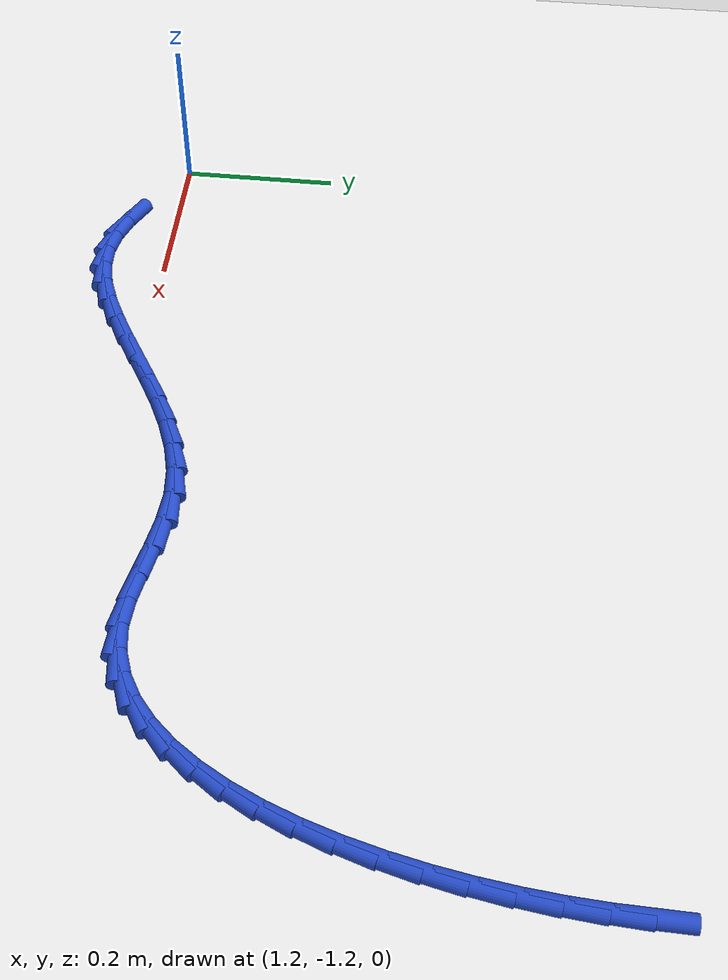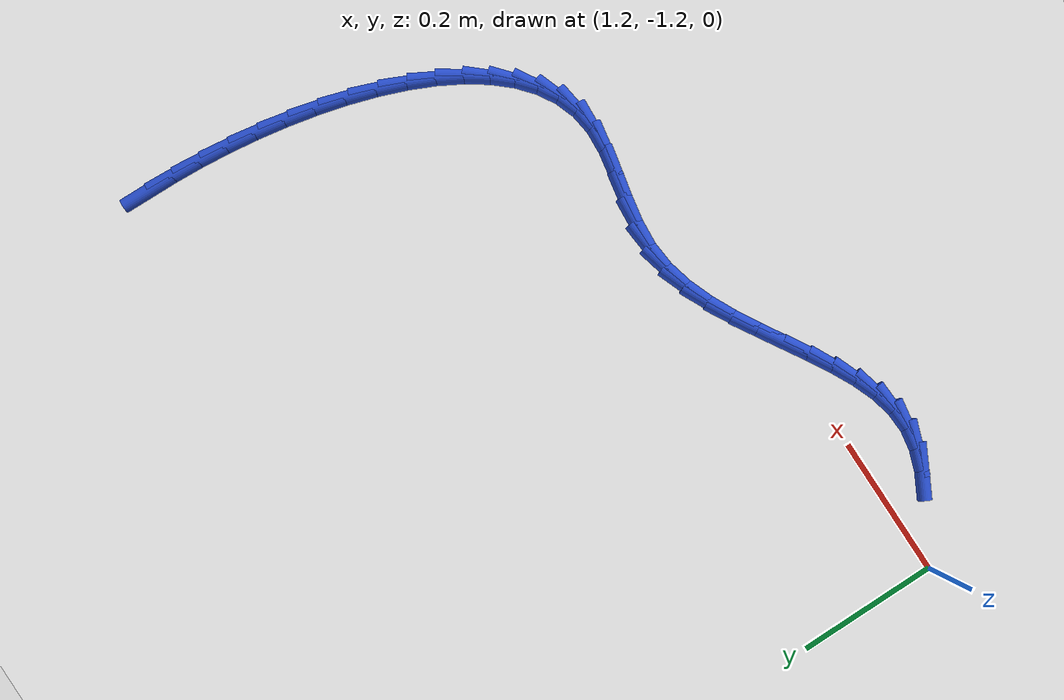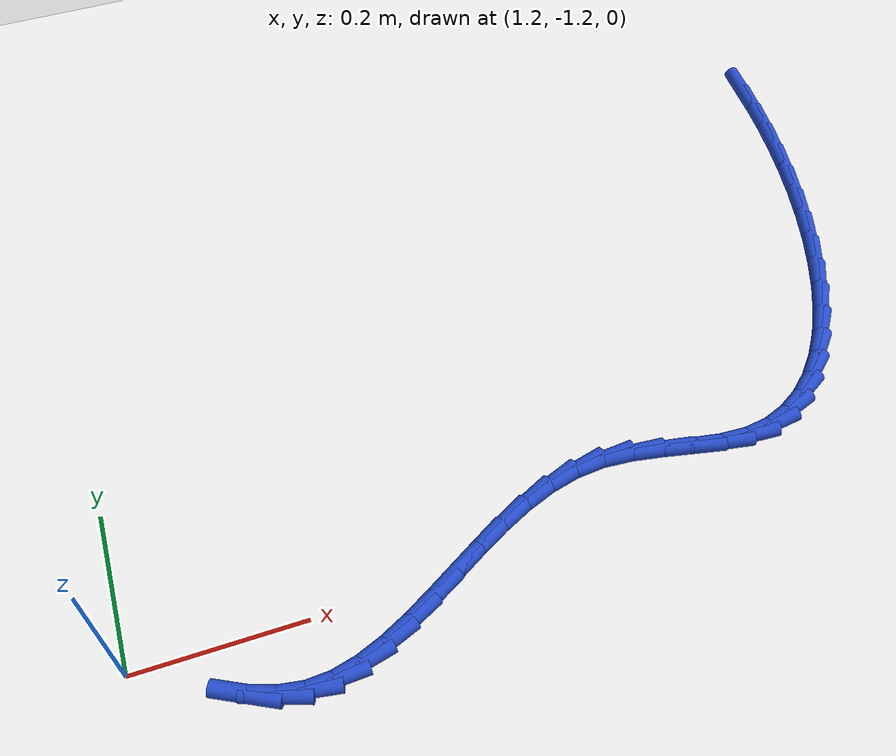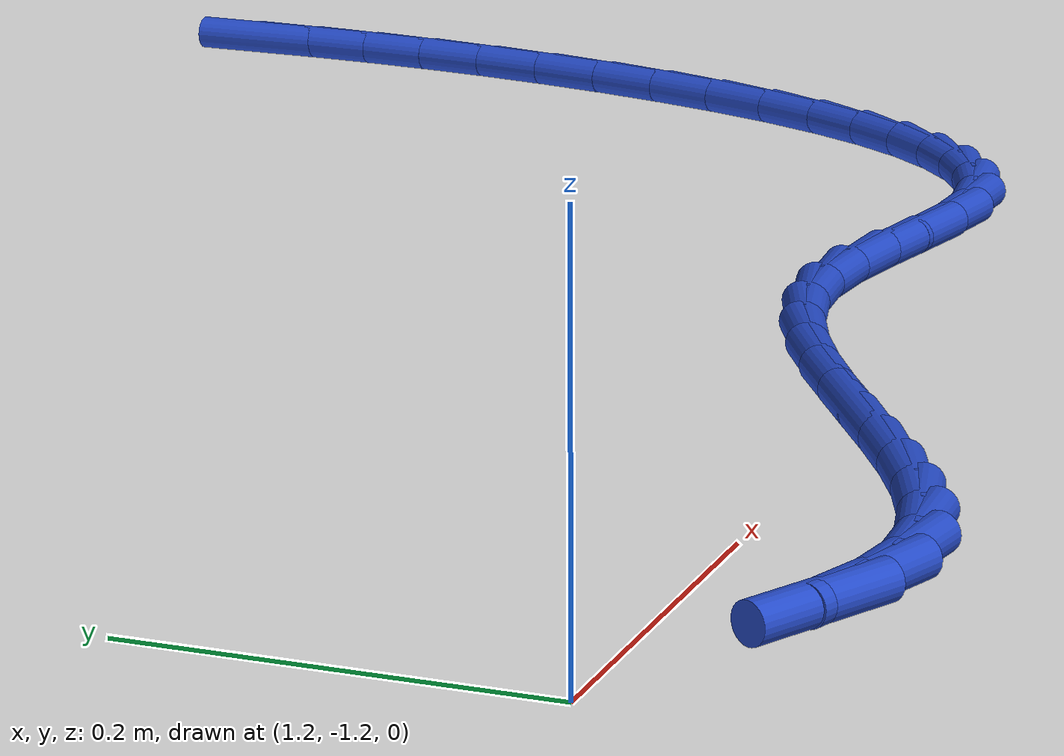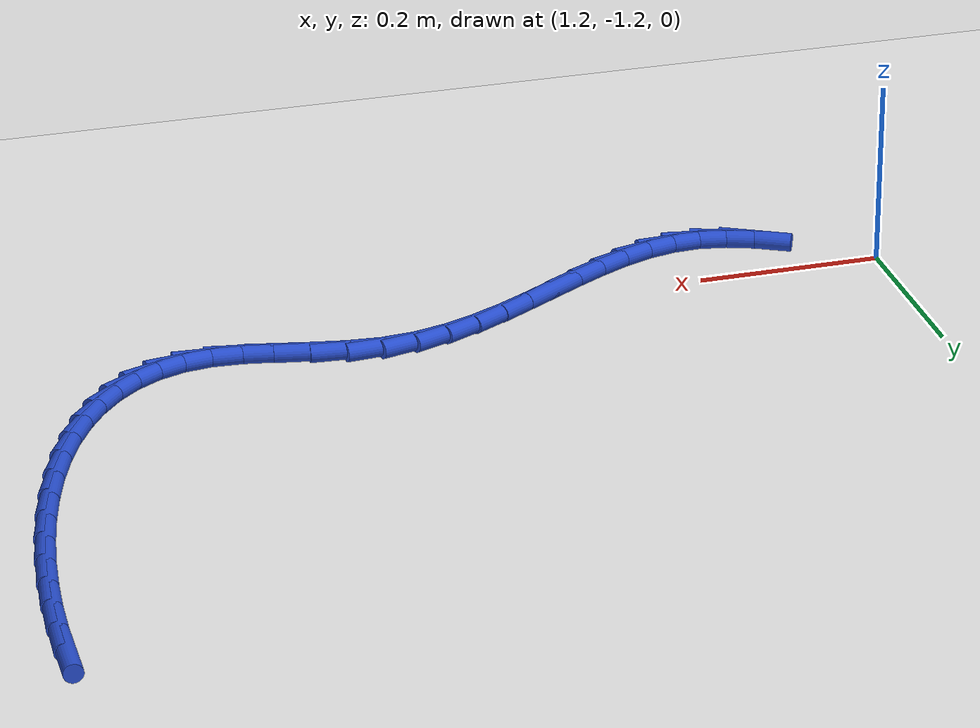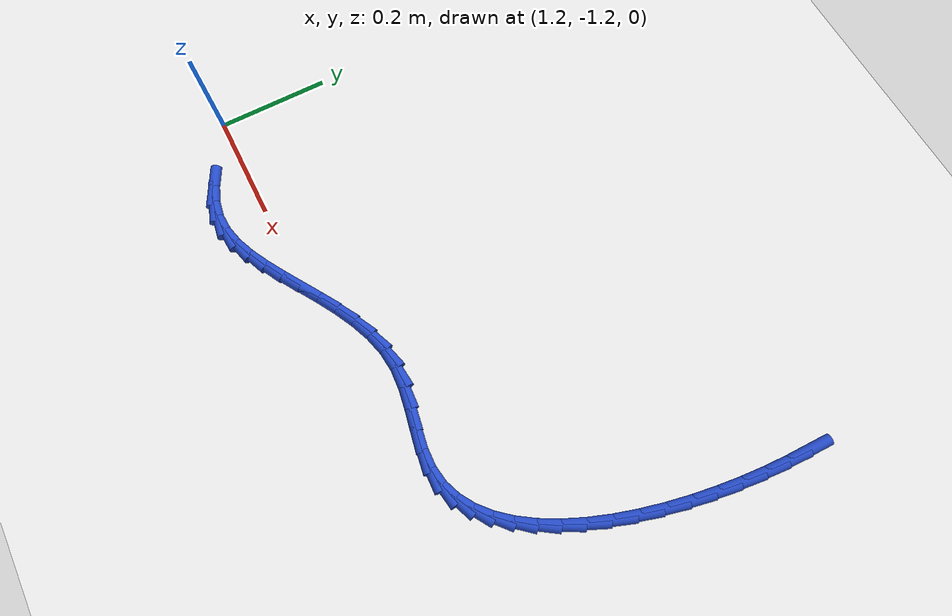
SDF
<sdf version="1.6">
 <world name="default">
  <model name="ground_plane">
   <static>1</static>
   <link name="link">
    <collision name="collision">
     <geometry><plane><normal>0 0 1</normal><size>100 100</size></plane></geometry>
     <surface><friction><ode><mu>100</mu><mu2>50</mu2></ode></friction></surface>
    </collision>
    <visual name="visual">
     <cast_shadows>0</cast_shadows>
     <geometry><plane><normal>0 0 1</normal><size>100 100</size></plane></geometry>
     <material>
      <script><uri>file://media/materials/scripts/gazebo.material</uri><name>Gazebo/WhiteGlow</name></script>
     </material>
    </visual>
   </link>
  </model>
  <model name="line">
   <link name="link_129">
    <pose>2.2099107903490363 -0.5931492830662242 0.01 0 1.57 1.547180392902716</pose>
    <collision name="collision">
     <geometry><cylinder><radius>0.01</radius><length>0.08</length></cylinder></geometry>
    </collision>
    <visual name="visual">
     <material>
      <script><name>Gazebo/Blue</name><uri>file://media/materials/scripts/gazebo.material</uri></script>
     </material>
     <geometry><cylinder><radius>0.01</radius><length>0.08</length></cylinder></geometry>
    </visual>
   </link>
   <link name="link_130">
    <pose>2.2089753102608602 -0.6327541607045764 0.01 0 1.57 1.5097225720881526</pose>
    <collision name="collision">
     <geometry><cylinder><radius>0.01</radius><length>0.08</length></cylinder></geometry>
    </collision>
    <visual name="visual">
     <material>
      <script><name>Gazebo/Blue</name><uri>file://media/materials/scripts/gazebo.material</uri></script>
     </material>
     <geometry><cylinder><radius>0.01</radius><length>0.08</length></cylinder></geometry>
    </visual>
   </link>
   <link name="link_131">
    <pose>2.2064498785391273 -0.6740532587601099 0.01 0 1.57 1.4731171753400605</pose>
    <collision name="collision">
     <geometry><cylinder><radius>0.01</radius><length>0.08</length></cylinder></geometry>
    </collision>
    <visual name="visual">
     <material>
      <script><name>Gazebo/Blue</name><uri>file://media/materials/scripts/gazebo.material</uri></script>
     </material>
     <geometry><cylinder><radius>0.01</radius><length>0.08</length></cylinder></geometry>
    </visual>
   </link>
   <link name="link_132">
    <pose>2.202285937525041 -0.7165463547779062 0.01 0 1.57 1.436318338306585</pose>
    <collision name="collision">
     <geometry><cylinder><radius>0.01</radius><length>0.08</length></cylinder></geometry>
    </collision>
    <visual name="visual">
     <material>
      <script><name>Gazebo/Blue</name><uri>file://media/materials/scripts/gazebo.material</uri></script>
     </material>
     <geometry><cylinder><radius>0.01</radius><length>0.08</length></cylinder></geometry>
    </visual>
   </link>
   <link name="link_133">
    <pose>2.19644593788883 -0.7597114335116681 0.01 0 1.57 1.3981449103466648</pose>
    <collision name="collision">
     <geometry><cylinder><radius>0.01</radius><length>0.08</length></cylinder></geometry>
    </collision>
    <visual name="visual">
     <material>
      <script><name>Gazebo/Blue</name><uri>file://media/materials/scripts/gazebo.material</uri></script>
     </material>
     <geometry><cylinder><radius>0.01</radius><length>0.08</length></cylinder></geometry>
    </visual>
   </link>
   <link name="link_134">
    <pose>2.188892330300722 -0.8030264797150984 0.01 0 1.57 1.3574177079162992</pose>
    <collision name="collision">
     <geometry><cylinder><radius>0.01</radius><length>0.08</length></cylinder></geometry>
    </collision>
    <visual name="visual">
     <material>
      <script><name>Gazebo/Blue</name><uri>file://media/materials/scripts/gazebo.material</uri></script>
     </material>
     <geometry><cylinder><radius>0.01</radius><length>0.08</length></cylinder></geometry>
    </visual>
   </link>
   <link name="link_135">
    <pose>2.1795875654309476 -0.8459694781419009 0.01 0 1.57 1.312850792020702</pose>
    <collision name="collision">
     <geometry><cylinder><radius>0.01</radius><length>0.08</length></cylinder></geometry>
    </collision>
    <visual name="visual">
     <material>
      <script><name>Gazebo/Blue</name><uri>file://media/materials/scripts/gazebo.material</uri></script>
     </material>
     <geometry><cylinder><radius>0.01</radius><length>0.08</length></cylinder></geometry>
    </visual>
   </link>
   <link name="link_136">
    <pose>2.1684940939497346 -0.8880184135457752 0.01 0 1.57 1.2629426563178079</pose>
    <collision name="collision">
     <geometry><cylinder><radius>0.01</radius><length>0.08</length></cylinder></geometry>
    </collision>
    <visual name="visual">
     <material>
      <script><name>Gazebo/Blue</name><uri>file://media/materials/scripts/gazebo.material</uri></script>
     </material>
     <geometry><cylinder><radius>0.01</radius><length>0.08</length></cylinder></geometry>
    </visual>
   </link>
   <link name="link_137">
    <pose>2.1555743665273126 -0.9286512706804253 0.01 0 1.57 1.2058547346896986</pose>
    <collision name="collision">
     <geometry><cylinder><radius>0.01</radius><length>0.08</length></cylinder></geometry>
    </collision>
    <visual name="visual">
     <material>
      <script><name>Gazebo/Blue</name><uri>file://media/materials/scripts/gazebo.material</uri></script>
     </material>
     <geometry><cylinder><radius>0.01</radius><length>0.08</length></cylinder></geometry>
    </visual>
   </link>
   <link name="link_138">
    <pose>2.1407908338339103 -0.967346034299553 0.01 0 1.57 1.1392716563661163</pose>
    <collision name="collision">
     <geometry><cylinder><radius>0.01</radius><length>0.08</length></cylinder></geometry>
    </collision>
    <visual name="visual">
     <material>
      <script><name>Gazebo/Blue</name><uri>file://media/materials/scripts/gazebo.material</uri></script>
     </material>
     <geometry><cylinder><radius>0.01</radius><length>0.08</length></cylinder></geometry>
    </visual>
   </link>
   <link name="link_139">
    <pose>2.124105946539757 -1.0035806891568624 0.01 0 1.57 1.0602536585326108</pose>
    <collision name="collision">
     <geometry><cylinder><radius>0.01</radius><length>0.08</length></cylinder></geometry>
    </collision>
    <visual name="visual">
     <material>
      <script><name>Gazebo/Blue</name><uri>file://media/materials/scripts/gazebo.material</uri></script>
     </material>
     <geometry><cylinder><radius>0.01</radius><length>0.08</length></cylinder></geometry>
    </visual>
   </link>
   <link name="link_140">
    <pose>2.105482155315081 -1.0368332200060535 0.01 0 1.57 0.9651334141929652</pose>
    <collision name="collision">
     <geometry><cylinder><radius>0.01</radius><length>0.08</length></cylinder></geometry>
    </collision>
    <visual name="visual">
     <material>
      <script><name>Gazebo/Blue</name><uri>file://media/materials/scripts/gazebo.material</uri></script>
     </material>
     <geometry><cylinder><radius>0.01</radius><length>0.08</length></cylinder></geometry>
    </visual>
   </link>
   <link name="link_141">
    <pose>2.0848819108301115 -1.0665816116008298 0.01 0 1.57 0.8496088207247903</pose>
    <collision name="collision">
     <geometry><cylinder><radius>0.01</radius><length>0.08</length></cylinder></geometry>
    </collision>
    <visual name="visual">
     <material>
      <script><name>Gazebo/Blue</name><uri>file://media/materials/scripts/gazebo.material</uri></script>
     </material>
     <geometry><cylinder><radius>0.01</radius><length>0.08</length></cylinder></geometry>
    </visual>
   </link>
   <link name="link_142">
    <pose>2.0622676637550774 -1.0923038486948935 0.01 0 1.57 0.7093725974170046</pose>
    <collision name="collision">
     <geometry><cylinder><radius>0.01</radius><length>0.08</length></cylinder></geometry>
    </collision>
    <visual name="visual">
     <material>
      <script><name>Gazebo/Blue</name><uri>file://media/materials/scripts/gazebo.material</uri></script>
     </material>
     <geometry><cylinder><radius>0.01</radius><length>0.08</length></cylinder></geometry>
    </visual>
   </link>
   <link name="link_143">
    <pose>2.037601864760208 -1.1134779160419481 0.01 0 1.57 0.5418183484068773</pose>
    <collision name="collision">
     <geometry><cylinder><radius>0.01</radius><length>0.08</length></cylinder></geometry>
    </collision>
    <visual name="visual">
     <material>
      <script><name>Gazebo/Blue</name><uri>file://media/materials/scripts/gazebo.material</uri></script>
     </material>
     <geometry><cylinder><radius>0.01</radius><length>0.08</length></cylinder></geometry>
    </visual>
   </link>
   <link name="link_144">
    <pose>2.010846964515733 -1.1295817983956948 0.01 0 1.57 0.3490553725179454</pose>
    <collision name="collision">
     <geometry><cylinder><radius>0.01</radius><length>0.08</length></cylinder></geometry>
    </collision>
    <visual name="visual">
     <material>
      <script><name>Gazebo/Blue</name><uri>file://media/materials/scripts/gazebo.material</uri></script>
     </material>
     <geometry><cylinder><radius>0.01</radius><length>0.08</length></cylinder></geometry>
    </visual>
   </link>
   <link name="link_145">
    <pose>1.9819654136918796 -1.1400934805098362 0.01 0 1.57 0.140708677738259</pose>
    <collision name="collision">
     <geometry><cylinder><radius>0.01</radius><length>0.08</length></cylinder></geometry>
    </collision>
    <visual name="visual">
     <material>
      <script><name>Gazebo/Blue</name><uri>file://media/materials/scripts/gazebo.material</uri></script>
     </material>
     <geometry><cylinder><radius>0.01</radius><length>0.08</length></cylinder></geometry>
    </visual>
   </link>
   <link name="link_146">
    <pose>1.9509196629588776 -1.1444909471380744 0.01 0 1.57 -0.053924832225870176</pose>
    <collision name="collision">
     <geometry><cylinder><radius>0.01</radius><length>0.08</length></cylinder></geometry>
    </collision>
    <visual name="visual">
     <material>
      <script><name>Gazebo/Blue</name><uri>file://media/materials/scripts/gazebo.material</uri></script>
     </material>
     <geometry><cylinder><radius>0.01</radius><length>0.08</length></cylinder></geometry>
    </visual>
   </link>
   <link name="link_147">
    <pose>1.9177568645210532 -1.1427009133874473 0.01 0 1.57 -0.16939278033059943</pose>
    <collision name="collision">
     <geometry><cylinder><radius>0.01</radius><length>0.08</length></cylinder></geometry>
    </collision>
    <visual name="visual">
     <material>
      <script><name>Gazebo/Blue</name><uri>file://media/materials/scripts/gazebo.material</uri></script>
     </material>
     <geometry><cylinder><radius>0.01</radius><length>0.08</length></cylinder></geometry>
    </visual>
   </link>
   <link name="link_148">
    <pose>1.882919139777973 -1.1367425554806854 0.01 0 1.57 -0.2055911781292505</pose>
    <collision name="collision">
     <geometry><cylinder><radius>0.01</radius><length>0.08</length></cylinder></geometry>
    </collision>
    <visual name="visual">
     <material>
      <script><name>Gazebo/Blue</name><uri>file://media/materials/scripts/gazebo.material</uri></script>
     </material>
     <geometry><cylinder><radius>0.01</radius><length>0.08</length></cylinder></geometry>
    </visual>
   </link>
   <link name="link_149">
    <pose>1.8469636454795517 -1.1292444819720189 0.01 0 1.57 -0.17374501323845148</pose>
    <collision name="collision">
     <geometry><cylinder><radius>0.01</radius><length>0.08</length></cylinder></geometry>
    </collision>
    <visual name="visual">
     <material>
      <script><name>Gazebo/Blue</name><uri>file://media/materials/scripts/gazebo.material</uri></script>
     </material>
     <geometry><cylinder><radius>0.01</radius><length>0.08</length></cylinder></geometry>
    </visual>
   </link>
   <link name="link_150">
    <pose>1.8104475515624632 -1.1228353712762835 0.01 0 1.57 -0.07356646574764819</pose>
    <collision name="collision">
     <geometry><cylinder><radius>0.01</radius><length>0.08</length></cylinder></geometry>
    </collision>
    <visual name="visual">
     <material>
      <script><name>Gazebo/Blue</name><uri>file://media/materials/scripts/gazebo.material</uri></script>
     </material>
     <geometry><cylinder><radius>0.01</radius><length>0.08</length></cylinder></geometry>
    </visual>
   </link>
   <link name="link_151">
    <pose>1.7739280279633822 -1.1201439018083157 0.01 0 1.57 0.09032797392830343</pose>
    <collision name="collision">
     <geometry><cylinder><radius>0.01</radius><length>0.08</length></cylinder></geometry>
    </collision>
    <visual name="visual">
     <material>
      <script><name>Gazebo/Blue</name><uri>file://media/materials/scripts/gazebo.material</uri></script>
     </material>
     <geometry><cylinder><radius>0.01</radius><length>0.08</length></cylinder></geometry>
    </visual>
   </link>
   <link name="link_152">
    <pose>1.737902611245131 -1.12340688392039 0.01 0 1.57 0.24874989497312475</pose>
    <collision name="collision">
     <geometry><cylinder><radius>0.01</radius><length>0.08</length></cylinder></geometry>
    </collision>
    <visual name="visual">
     <material>
      <script><name>Gazebo/Blue</name><uri>file://media/materials/scripts/gazebo.material</uri></script>
     </material>
     <geometry><cylinder><radius>0.01</radius><length>0.08</length></cylinder></geometry>
    </visual>
   </link>
   <link name="link_153">
    <pose>1.7024944529444175 -1.1324009362071166 0.01 0 1.57 0.37116405091447324</pose>
    <collision name="collision">
     <geometry><cylinder><radius>0.01</radius><length>0.08</length></cylinder></geometry>
    </collision>
    <visual name="visual">
     <material>
      <script><name>Gazebo/Blue</name><uri>file://media/materials/scripts/gazebo.material</uri></script>
     </material>
     <geometry><cylinder><radius>0.01</radius><length>0.08</length></cylinder></geometry>
    </visual>
   </link>
   <link name="link_154">
    <pose>1.6676817505028894 -1.1459501421854976 0.01 0 1.57 0.4591207099845057</pose>
    <collision name="collision">
     <geometry><cylinder><radius>0.01</radius><length>0.08</length></cylinder></geometry>
    </collision>
    <visual name="visual">
     <material>
      <script><name>Gazebo/Blue</name><uri>file://media/materials/scripts/gazebo.material</uri></script>
     </material>
     <geometry><cylinder><radius>0.01</radius><length>0.08</length></cylinder></geometry>
    </visual>
   </link>
   <link name="link_155">
    <pose>1.6334423859927103 -1.1628765129888972 0.01 0 1.57 0.5163485007197834</pose>
    <collision name="collision">
     <geometry><cylinder><radius>0.01</radius><length>0.08</length></cylinder></geometry>
    </collision>
    <visual name="visual">
     <material>
      <script><name>Gazebo/Blue</name><uri>file://media/materials/scripts/gazebo.material</uri></script>
     </material>
     <geometry><cylinder><radius>0.01</radius><length>0.08</length></cylinder></geometry>
    </visual>
   </link>
   <link name="link_156">
    <pose>1.5997542414860468 -1.1820020597506822 0.01 0 1.57 0.5459735779171649</pose>
    <collision name="collision">
     <geometry><cylinder><radius>0.01</radius><length>0.08</length></cylinder></geometry>
    </collision>
    <visual name="visual">
     <material>
      <script><name>Gazebo/Blue</name><uri>file://media/materials/scripts/gazebo.material</uri></script>
     </material>
     <geometry><cylinder><radius>0.01</radius><length>0.08</length></cylinder></geometry>
    </visual>
   </link>
   <link name="link_157">
    <pose>1.5665951990550642 -1.2021487936042154 0.01 0 1.57 0.5493494459381342</pose>
    <collision name="collision">
     <geometry><cylinder><radius>0.01</radius><length>0.08</length></cylinder></geometry>
    </collision>
    <visual name="visual">
     <material>
      <script><name>Gazebo/Blue</name><uri>file://media/materials/scripts/gazebo.material</uri></script>
     </material>
     <geometry><cylinder><radius>0.01</radius><length>0.08</length></cylinder></geometry>
    </visual>
   </link>
   <link name="link_158">
    <pose>1.533943140771927 -1.2221387256828637 0.01 0 1.57 0.5255412236567004</pose>
    <collision name="collision">
     <geometry><cylinder><radius>0.01</radius><length>0.08</length></cylinder></geometry>
    </collision>
    <visual name="visual">
     <material>
      <script><name>Gazebo/Blue</name><uri>file://media/materials/scripts/gazebo.material</uri></script>
     </material>
     <geometry><cylinder><radius>0.01</radius><length>0.08</length></cylinder></geometry>
    </visual>
   </link>
   <link name="link_159">
    <pose>1.5017759487088005 -1.2407938671199923 0.01 0 1.57 0.47094189789296753</pose>
    <collision name="collision">
     <geometry><cylinder><radius>0.01</radius><length>0.08</length></cylinder></geometry>
    </collision>
    <visual name="visual">
     <material>
      <script><name>Gazebo/Blue</name><uri>file://media/materials/scripts/gazebo.material</uri></script>
     </material>
     <geometry><cylinder><radius>0.01</radius><length>0.08</length></cylinder></geometry>
    </visual>
   </link>
   <link name="link_160">
    <pose>1.470071504937849 -1.256936229048966 0.01 0 1.57 0.379018376399887</pose>
    <collision name="collision">
     <geometry><cylinder><radius>0.01</radius><length>0.08</length></cylinder></geometry>
    </collision>
    <visual name="visual">
     <material>
      <script><name>Gazebo/Blue</name><uri>file://media/materials/scripts/gazebo.material</uri></script>
     </material>
     <geometry><cylinder><radius>0.01</radius><length>0.08</length></cylinder></geometry>
    </visual>
   </link>
   <link name="link_161">
    <pose>1.438807691531239 -1.2693878226031499 0.01 0 1.57 0.24105427991552084</pose>
    <collision name="collision">
     <geometry><cylinder><radius>0.01</radius><length>0.08</length></cylinder></geometry>
    </collision>
    <visual name="visual">
     <material>
      <script><name>Gazebo/Blue</name><uri>file://media/materials/scripts/gazebo.material</uri></script>
     </material>
     <geometry><cylinder><radius>0.01</radius><length>0.08</length></cylinder></geometry>
    </visual>
   </link>
   <link name="link_162">
    <pose>1.4079623905611354 -1.276970658915909 0.01 0 1.57 0.05062183980375468</pose>
    <collision name="collision">
     <geometry><cylinder><radius>0.01</radius><length>0.08</length></cylinder></geometry>
    </collision>
    <visual name="visual">
     <material>
      <script><name>Gazebo/Blue</name><uri>file://media/materials/scripts/gazebo.material</uri></script>
     </material>
     <geometry><cylinder><radius>0.01</radius><length>0.08</length></cylinder></geometry>
    </visual>
   </link>
   <link name="link_163">
    <pose>1.3775131850719609 -1.2785133717137007 0.01 0 1.57 -0.16405361848432104</pose>
    <collision name="collision">
     <geometry><cylinder><radius>0.01</radius><length>0.08</length></cylinder></geometry>
    </collision>
    <visual name="visual">
     <material>
      <script><name>Gazebo/Blue</name><uri>file://media/materials/scripts/gazebo.material</uri></script>
     </material>
     <geometry><cylinder><radius>0.01</radius><length>0.08</length></cylinder></geometry>
    </visual>
   </link>
   <link name="link_164">
    <pose>1.3474067324662882 -1.2735295075702389 0.01 0 1.57 -0.3446755495492541</pose>
    <collision name="collision">
     <geometry><cylinder><radius>0.01</radius><length>0.08</length></cylinder></geometry>
    </collision>
    <visual name="visual">
     <material>
      <script><name>Gazebo/Blue</name><uri>file://media/materials/scripts/gazebo.material</uri></script>
     </material>
     <geometry><cylinder><radius>0.01</radius><length>0.08</length></cylinder></geometry>
    </visual>
   </link>
   <link name="link_165">
    <pose>1.317532266116618 -1.262804387987189 0.01 0 1.57 -0.48131193251210164</pose>
    <collision name="collision">
     <geometry><cylinder><radius>0.01</radius><length>0.08</length></cylinder></geometry>
    </collision>
    <visual name="visual">
     <material>
      <script><name>Gazebo/Blue</name><uri>file://media/materials/scripts/gazebo.material</uri></script>
     </material>
     <geometry><cylinder><radius>0.01</radius><length>0.08</length></cylinder></geometry>
    </visual>
   </link>
  </model>
 </world>
</sdf>
